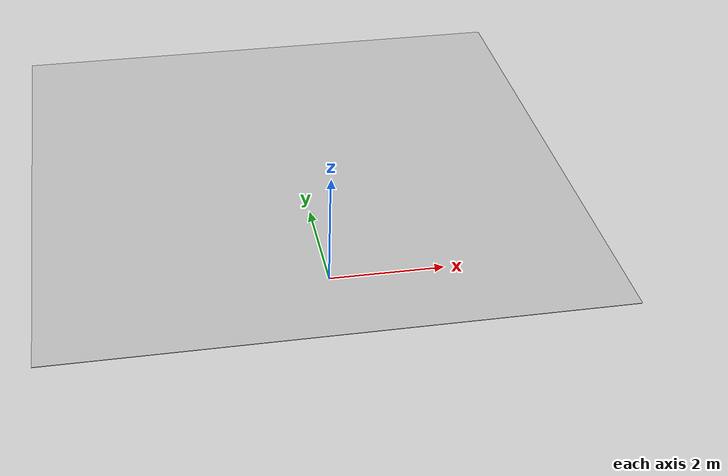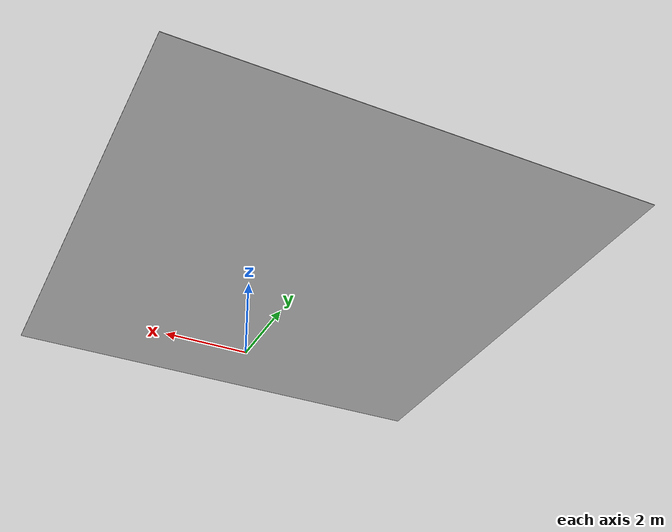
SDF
<?xml version='1.0'?>
<sdf version='1.7'>
  <model name='GroundPlane_Desert_Collision'>
    <static>1</static>
    <link name='ground'>
      <pose>0 3.5 0 0 -0 0</pose>
      <inertial>
        <inertia>
          <ixx>506.983</ixx>
          <ixy>0</ixy>
          <ixz>0</ixz>
          <iyy>506.983</iyy>
          <iyz>0</iyz>
          <izz>1013.33</izz>
        </inertia>
        <mass>1520</mass>
        <pose>0 0 0 0 -0 0</pose>
      </inertial>
      <self_collide>0</self_collide>
      <enable_wind>0</enable_wind>
      <kinematic>0</kinematic>
      <gravity>0</gravity>
      <visual name='ground_visual'>
        <cast_shadows>0</cast_shadows>
        <geometry>
          <box>
            <size>10 10 0.01</size>
          </box>
        </geometry>
        <material>
          <script>
            <uri>model://GroundPlane_Desert_Collision/materials/scripts</uri>
            <uri>model://GroundPlane_Desert_Collision/materials/textures</uri>
            <name>groundMat/Dirt</name>
          </script>
          <shader type='pixel'>
            <normal_map>__default__</normal_map>
          </shader>
        </material>
        <pose>0 0 0 0 -0 0</pose>
      </visual>
      <collision name='ground_collision'>
        <laser_retro>0</laser_retro>
        <max_contacts>10</max_contacts>
        <pose>0 0 0 0 -0 0</pose>
        <geometry>
          <box>
            <size>30 30 0.05</size>
          </box>
        </geometry>
        <surface>
          <friction>
            <ode>
              <mu>100000</mu>
              <mu2>100000</mu2>
              <fdir1>0 0 0</fdir1>
              <slip1>0</slip1>
              <slip2>0</slip2>
            </ode>
            <torsional>
              <coefficient>1</coefficient>
              <patch_radius>0</patch_radius>
              <surface_radius>0</surface_radius>
              <use_patch_radius>1</use_patch_radius>
              <ode>
                <slip>0</slip>
              </ode>
            </torsional>
          </friction>
          <bounce>
            <restitution_coefficient>0</restitution_coefficient>
            <threshold>1e+06</threshold>
          </bounce>
          <contact>
            <collide_without_contact>0</collide_without_contact>
            <collide_without_contact_bitmask>1</collide_without_contact_bitmask>
            <collide_bitmask>65535</collide_bitmask>
            <ode>
              <soft_cfm>0</soft_cfm>
              <soft_erp>0.2</soft_erp>
              <kp>1e+13</kp>
              <kd>1</kd>
              <max_vel>0.01</max_vel>
              <min_depth>0</min_depth>
            </ode>
            <bullet>
              <split_impulse>1</split_impulse>
              <split_impulse_penetration_threshold>-0.01</split_impulse_penetration_threshold>
              <soft_cfm>0</soft_cfm>
              <soft_erp>0.2</soft_erp>
              <kp>1e+13</kp>
              <kd>1</kd>
            </bullet>
          </contact>
        </surface>
      </collision>
    </link>
    <static>0</static>
    <allow_auto_disable>1</allow_auto_disable>
  </model>
</sdf>
